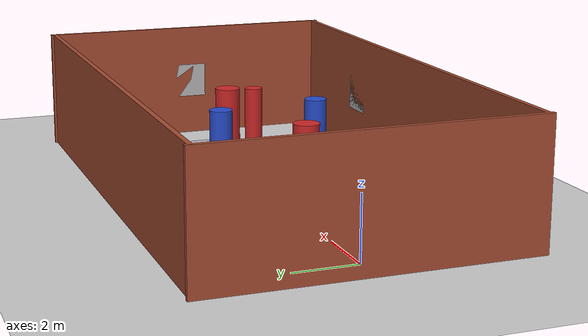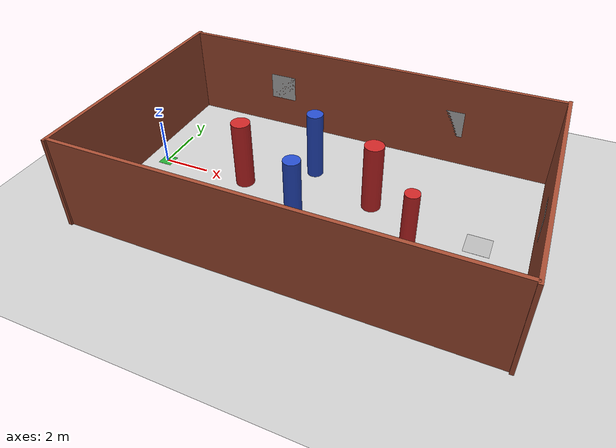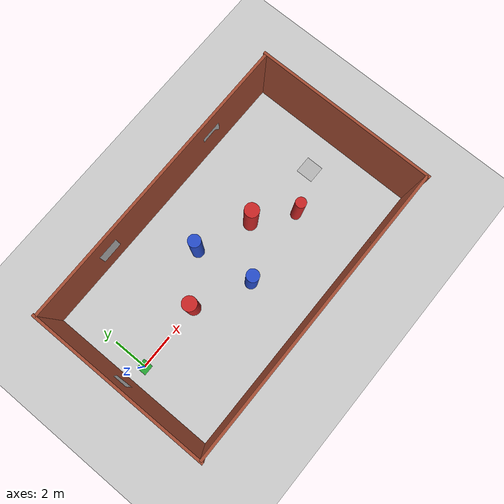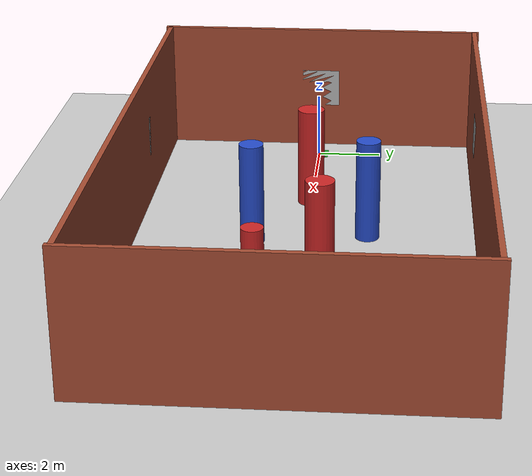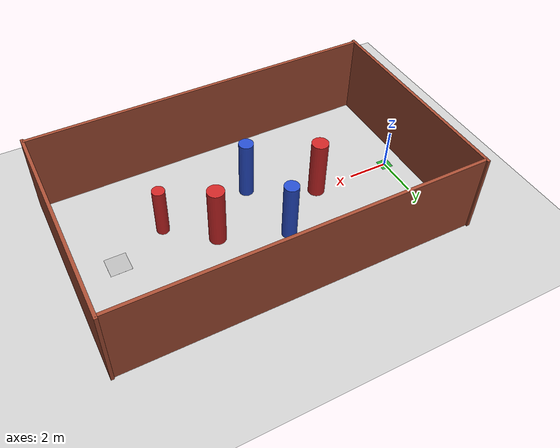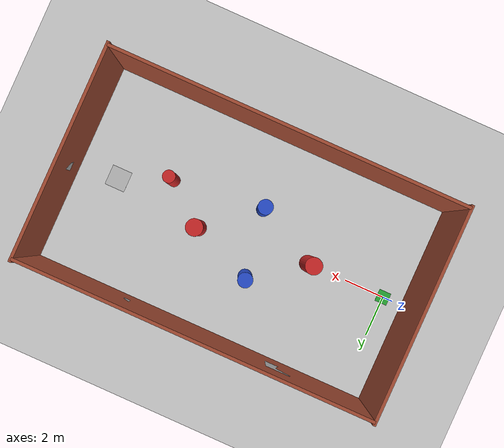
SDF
<?xml version="1.0" ?>
<sdf version="1.6">
  <world name="obstacle_course">

    <plugin name="ros_interface_plugin"
            filename="librotors_gazebo_ros_interface_plugin.so"/>

    <!-- ── Physics ──────────────────────────────────────────────────────── -->
    <physics type="ode">
      <max_step_size>0.001</max_step_size>
      <real_time_factor>1</real_time_factor>
      <real_time_update_rate>1000</real_time_update_rate>
      <gravity>0 0 -9.81</gravity>
    </physics>

    <!-- ── Lighting: uniform point lights (no harsh shadows) ────────────── -->
    <!-- Remove the sun to get consistent indoor illumination -->

    <light name="light_00" type="point">
      <pose>2.5 0 3.8 0 0 0</pose>
      <diffuse>0.9 0.9 0.9 1</diffuse>
      <specular>0.2 0.2 0.2 1</specular>
      <attenuation><range>8</range><constant>0.4</constant><linear>0.01</linear><quadratic>0.0</quadratic></attenuation>
      <cast_shadows>false</cast_shadows>
    </light>
    <light name="light_01" type="point">
      <pose>7.5 0 3.8 0 0 0</pose>
      <diffuse>0.9 0.9 0.9 1</diffuse>
      <specular>0.2 0.2 0.2 1</specular>
      <attenuation><range>8</range><constant>0.4</constant><linear>0.01</linear><quadratic>0.0</quadratic></attenuation>
      <cast_shadows>false</cast_shadows>
    </light>
    <light name="light_02" type="point">
      <pose>12.5 0 3.8 0 0 0</pose>
      <diffuse>0.9 0.9 0.9 1</diffuse>
      <specular>0.2 0.2 0.2 1</specular>
      <attenuation><range>8</range><constant>0.4</constant><linear>0.01</linear><quadratic>0.0</quadratic></attenuation>
      <cast_shadows>false</cast_shadows>
    </light>

    <model name="ground_plane">
      <static>true</static>
      <link name="link">
        <collision name="collision">
          <geometry><plane><normal>0 0 1</normal><size>50 50</size></plane></geometry>
        </collision>
        <visual name="visual">
          <geometry><plane><normal>0 0 1</normal><size>50 50</size></plane></geometry>
          <material>
            <script>
              <uri>file://media/materials/scripts/gazebo.material</uri>
              <!-- Checkerboard gives maximum corner features for RTMAP/ORB -->
              <name>Gazebo/Checkerboard</name>
            </script>
          </material>
        </visual>
      </link>
    </model>

    <!-- North wall  (y = +5) -->
    <model name="wall_N">
      <static>true</static>
      <pose>7.5 5.0 2.0 0 0 0</pose>
      <link name="link">
        <collision name="collision">
          <geometry><box><size>17 0.15 4.0</size></box></geometry>
        </collision>
        <visual name="visual">
          <geometry><box><size>17 0.15 4.0</size></box></geometry>
          <material>
            <script>
              <uri>file://media/materials/scripts/gazebo.material</uri>
              <name>Gazebo/Bricks</name>
            </script>
          </material>
        </visual>
      </link>
    </model>

    <!-- South wall  (y = -5) -->
    <model name="wall_S">
      <static>true</static>
      <pose>7.5 -5.0 2.0 0 0 0</pose>
      <link name="link">
        <collision name="collision">
          <geometry><box><size>17 0.15 4.0</size></box></geometry>
        </collision>
        <visual name="visual">
          <geometry><box><size>17 0.15 4.0</size></box></geometry>
          <material>
            <script>
              <uri>file://media/materials/scripts/gazebo.material</uri>
              <name>Gazebo/Bricks</name>
            </script>
          </material>
        </visual>
      </link>
    </model>

    <!-- West wall  (x = -1) -->
    <model name="wall_W">
      <static>true</static>
      <pose>-1.0 0 2.0 0 0 0</pose>
      <link name="link">
        <collision name="collision">
          <geometry><box><size>0.15 10.3 4.0</size></box></geometry>
        </collision>
        <visual name="visual">
          <geometry><box><size>0.15 10.3 4.0</size></box></geometry>
          <material>
            <script>
              <uri>file://media/materials/scripts/gazebo.material</uri>
              <name>Gazebo/Bricks</name>
            </script>
          </material>
        </visual>
      </link>
    </model>

    <!-- East wall  (x = 16) -->
    <model name="wall_E">
      <static>true</static>
      <pose>16.0 0 2.0 0 0 0</pose>
      <link name="link">
        <collision name="collision">
          <geometry><box><size>0.15 10.3 4.0</size></box></geometry>
        </collision>
        <visual name="visual">
          <geometry><box><size>0.15 10.3 4.0</size></box></geometry>
          <material>
            <script>
              <uri>file://media/materials/scripts/gazebo.material</uri>
              <name>Gazebo/Bricks</name>
            </script>
          </material>
        </visual>
      </link>
    </model>

    <!-- North wall boards -->
    <model name="board_N1">
      <static>true</static>
      <pose>3.5 4.93 2.0 0 0 0</pose>
      <link name="link">
        <visual name="visual">
          <geometry><box><size>1.2 0.01 1.2</size></box></geometry>
          <material><script>
            <uri>file://media/materials/scripts/gazebo.material</uri>
            <name>Gazebo/Checkerboard</name>
          </script></material>
        </visual>
      </link>
    </model>
    <model name="board_N2">
      <static>true</static>
      <pose>11.5 4.93 2.0 0 0 0</pose>
      <link name="link">
        <visual name="visual">
          <geometry><box><size>1.2 0.01 1.2</size></box></geometry>
          <material><script>
            <uri>file://media/materials/scripts/gazebo.material</uri>
            <name>Gazebo/Checkerboard</name>
          </script></material>
        </visual>
      </link>
    </model>

    <!-- South wall boards -->
    <model name="board_S1">
      <static>true</static>
      <pose>3.5 -4.93 2.0 0 0 0</pose>
      <link name="link">
        <visual name="visual">
          <geometry><box><size>1.2 0.01 1.2</size></box></geometry>
          <material><script>
            <uri>file://media/materials/scripts/gazebo.material</uri>
            <name>Gazebo/Checkerboard</name>
          </script></material>
        </visual>
      </link>
    </model>
    <model name="board_S2">
      <static>true</static>
      <pose>11.5 -4.93 2.0 0 0 0</pose>
      <link name="link">
        <visual name="visual">
          <geometry><box><size>1.2 0.01 1.2</size></box></geometry>
          <material><script>
            <uri>file://media/materials/scripts/gazebo.material</uri>
            <name>Gazebo/Checkerboard</name>
          </script></material>
        </visual>
      </link>
    </model>

    <!-- West wall board (behind start) -->
    <model name="board_W">
      <static>true</static>
      <pose>-0.93 0 2.0 0 0 0</pose>
      <link name="link">
        <visual name="visual">
          <geometry><box><size>0.01 1.2 1.2</size></box></geometry>
          <material><script>
            <uri>file://media/materials/scripts/gazebo.material</uri>
            <name>Gazebo/Checkerboard</name>
          </script></material>
        </visual>
      </link>
    </model>

    <!-- East wall board (near landing zone) -->
    <model name="board_E">
      <static>true</static>
      <pose>15.93 0 2.0 0 0 0</pose>
      <link name="link">
        <visual name="visual">
          <geometry><box><size>0.01 1.2 1.2</size></box></geometry>
          <material><script>
            <uri>file://media/materials/scripts/gazebo.material</uri>
            <name>Gazebo/Checkerboard</name>
          </script></material>
        </visual>
      </link>
    </model>

    <model name="start_marker">
      <static>true</static>
      <pose>0 0 0.001 0 0 0</pose>
      <link name="link">
        <visual name="visual">
          <geometry><box><size>0.6 0.6 0.002</size></box></geometry>
          <material><script>
            <uri>file://media/materials/scripts/gazebo.material</uri>
            <name>Gazebo/Green</name>
          </script></material>
        </visual>
      </link>
    </model>

    <model name="pillar_1">
      <static>true</static>
      <pose>4.0 0.0 1.5 0 0 0</pose>
      <link name="link">
        <visual name="visual">
          <geometry><cylinder><radius>0.40</radius><length>3.0</length></cylinder></geometry>
          <material><script>
            <uri>file://media/materials/scripts/gazebo.material</uri>
            <name>Gazebo/Red</name>
          </script></material>
        </visual>
        <collision name="collision">
          <geometry><cylinder><radius>0.40</radius><length>3.0</length></cylinder></geometry>
        </collision>
      </link>
    </model>

    <model name="pillar_2">
      <static>true</static>
      <pose>6.5 1.8 1.5 0 0 0</pose>
      <link name="link">
        <visual name="visual">
          <geometry><cylinder><radius>0.35</radius><length>3.0</length></cylinder></geometry>
          <material><script>
            <uri>file://media/materials/scripts/gazebo.material</uri>
            <name>Gazebo/Blue</name>
          </script></material>
        </visual>
        <collision name="collision">
          <geometry><cylinder><radius>0.35</radius><length>3.0</length></cylinder></geometry>
        </collision>
      </link>
    </model>

    <model name="pillar_3">
      <static>true</static>
      <pose>7.0 -1.5 1.5 0 0 0</pose>
      <link name="link">
        <visual name="visual">
          <geometry><cylinder><radius>0.35</radius><length>3.0</length></cylinder></geometry>
          <material><script>
            <uri>file://media/materials/scripts/gazebo.material</uri>
            <name>Gazebo/Blue</name>
          </script></material>
        </visual>
        <collision name="collision">
          <geometry><cylinder><radius>0.35</radius><length>3.0</length></cylinder></geometry>
        </collision>
      </link>
    </model>

    <model name="pillar_4">
      <static>true</static>
      <pose>9.5 0.6 1.5 0 0 0</pose>
      <link name="link">
        <visual name="visual">
          <geometry><cylinder><radius>0.40</radius><length>3.0</length></cylinder></geometry>
          <material><script>
            <uri>file://media/materials/scripts/gazebo.material</uri>
            <name>Gazebo/Red</name>
          </script></material>
        </visual>
        <collision name="collision">
          <geometry><cylinder><radius>0.40</radius><length>3.0</length></cylinder></geometry>
        </collision>
      </link>
    </model>

    <model name="pillar_5">
      <static>true</static>
      <pose>11.5 -1.0 1.25 0 0 0</pose>
      <link name="link">
        <visual name="visual">
          <geometry><cylinder><radius>0.30</radius><length>2.5</length></cylinder></geometry>
          <material><script>
            <uri>file://media/materials/scripts/gazebo.material</uri>
            <name>Gazebo/Red</name>
          </script></material>
        </visual>
        <collision name="collision">
          <geometry><cylinder><radius>0.30</radius><length>2.5</length></cylinder></geometry>
        </collision>
      </link>
    </model>

    <!-- ══════════════════════════════════════════════════════════════════
         APRILTAG LANDING PAD  (unchanged)
         ══════════════════════════════════════════════════════════════════ -->
    <model name="apriltag_pad">
      <static>true</static>
      <pose>14.0 0.0 0.001 0 0 0</pose>
      <link name="link">
        <visual name="visual">
          <geometry><box><size>1.0 1.0 0.002</size></box></geometry>
          <material>
            <script>
              <uri>file://media/materials/scripts/apriltag.material</uri>
              <name>AprilTagPad/tag36_11_00000</name>
            </script>
          </material>
        </visual>
        <collision name="collision">
          <geometry><box><size>1.0 1.0 0.002</size></box></geometry>
        </collision>
      </link>
    </model>

    <!-- ── GUI camera ───────────────────────────────────────────────────── -->
    <!-- Side view from south at y=-12, z=2.5: looks inside corridor without
         being blocked by ceiling. Yaw=1.57 faces +X (forward flight axis). -->
    <gui fullscreen="0">
      <camera name="user_camera">
        <pose>7 -12 2.5 0 0.15 1.57</pose>
        <view_controller>orbit</view_controller>
      </camera>
    </gui>

  </world>
</sdf>
